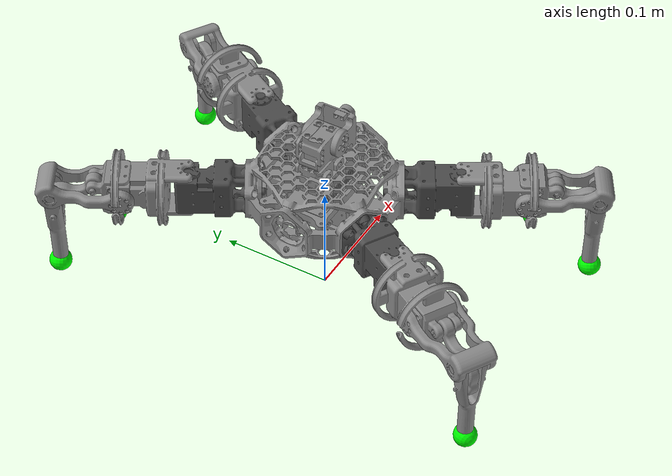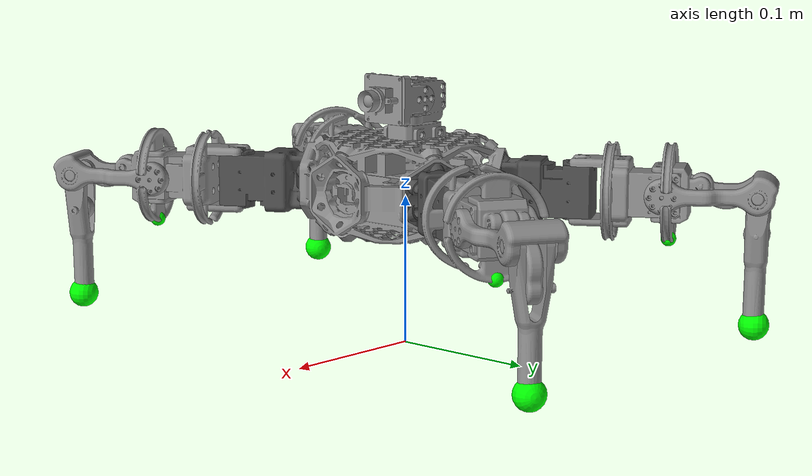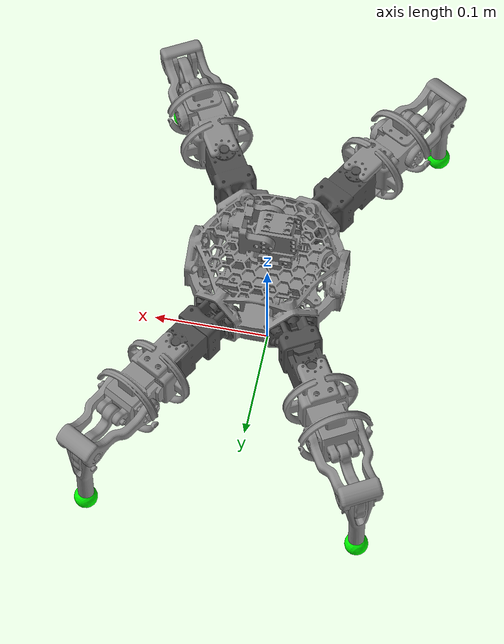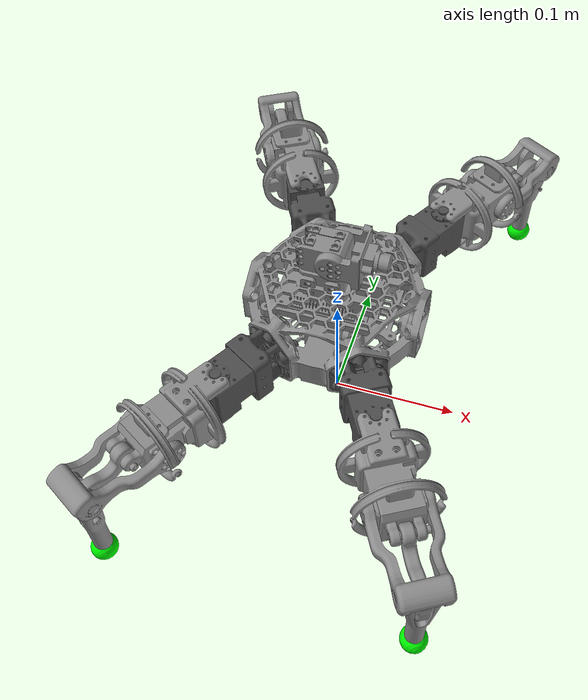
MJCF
<mujoco model="snapbot">

    <!-- Complier -->
    <compiler inertiafromgeom="auto" meshdir="./mesh" angle="radian" coordinate="local" />

    <!-- Default -->
    <default>
        <joint limited="false" armature="0.01" />
        <site type="sphere" rgba=".5 .5 .5 1" size="0.01" />
        <equality solref="0.0002 1" solimp="0.99 0.99 0.0001" />
    </default>

    <!-- Option -->
    <option timestep="0.002" iterations="100" solver="Newton" gravity="0 0 -9.81" integrator="RK4"></option>

    <!-- Mesh files -->
    <asset>
        <mesh name="Body" file="Body.STL" />
        <mesh name="Camera_module_1" file="Camera_module_1.STL" />
        <mesh name="Camera_module_2" file="Camera_module_2.STL" />

        <mesh name="Leg_module_1_1" file="Leg_module_1_1.STL" />
        <mesh name="Leg_module_1_2" file="Leg_module_1_2.STL" />
        <mesh name="Leg_module_1_3" file="Leg_module_1_3.STL" />
        <mesh name="Leg_module_1_4" file="Leg_module_1_4.STL" />
        <mesh name="Leg_module_1_4bar" file="Leg_module_1_4bar.STL" />

        <mesh name="Leg_module_2_1" file="Leg_module_2_1.STL" />
        <mesh name="Leg_module_2_2" file="Leg_module_2_2.STL" />
        <mesh name="Leg_module_2_3" file="Leg_module_2_3.STL" />
        <mesh name="Leg_module_2_4" file="Leg_module_2_4.STL" />
        <mesh name="Leg_module_2_4bar" file="Leg_module_2_4bar.STL" />

        <mesh name="Leg_module_3_1" file="Leg_module_3_1.STL" />
        <mesh name="Leg_module_3_2" file="Leg_module_3_2.STL" />
        <mesh name="Leg_module_3_3" file="Leg_module_3_3.STL" />
        <mesh name="Leg_module_3_4" file="Leg_module_3_4.STL" />
        <mesh name="Leg_module_3_4bar" file="Leg_module_3_4bar.STL" />

        <mesh name="Leg_module_4_1" file="Leg_module_4_1.STL" />
        <mesh name="Leg_module_4_2" file="Leg_module_4_2.STL" />
        <mesh name="Leg_module_4_3" file="Leg_module_4_3.STL" />
        <mesh name="Leg_module_4_4" file="Leg_module_4_4.STL" />
        <mesh name="Leg_module_4_4bar" file="Leg_module_4_4bar.STL" />

        <mesh name="Leg_module_5_1" file="Leg_module_5_1.STL" />
        <mesh name="Leg_module_5_2" file="Leg_module_5_2.STL" />
        <mesh name="Leg_module_5_3" file="Leg_module_5_3.STL" />
        <mesh name="Leg_module_5_4" file="Leg_module_5_4.STL" />
        <mesh name="Leg_module_5_4bar" file="Leg_module_5_4bar.STL" />

        <mesh name="Leg_module_6_1" file="Leg_module_6_1.STL" />
        <mesh name="Leg_module_6_2" file="Leg_module_6_2.STL" />
        <mesh name="Leg_module_6_3" file="Leg_module_6_3.STL" />
        <mesh name="Leg_module_6_4" file="Leg_module_6_4.STL" />
        <mesh name="Leg_module_6_4bar" file="Leg_module_6_4bar.STL" />
        <mesh name="Mario_case" file="Mario_case.STL" />
        <mesh name="Ship" file="ship.stl" />
    </asset>

    <worldbody>

        <body name="torso" pos="0 0 0.1" euler="0 0 0">
            <!-- if you want to fix snapbot -->
            <!-- if you want to simulate locomotion -->
            <joint type="free" name="free" />
            <body name="Camera_module_1" pos="0 0 0.0476705257539267" euler="0 0 2.71487279909846">
                <joint name="camera_1" type="hinge" pos="0 0 0" axis="0 0 1" frictionloss="0.7" />
                <inertial pos="0.00652656979384509 0.00344579233179434 0.0166383716296387"
                    mass="0.0631785349056668"
                    fullinertia="1.62642913929261E-06 2.16302130147651E-06 2.57241198744282E-06 -2.15537782337987E-07 -2.3575284377688E-08 -1.07181784470334E-08" />

                <body name="Camera_module_2" pos="0 0 0.0183294742460734"
                    euler="-0.00940777862508657 0.016293068306851 -7.66430506155596E-05">
                    <joint name="camera_2" type="hinge" pos="0 0 0" axis="0.4 -0.866025403784438 0"
                        limited="true" range="-3.14 0" frictionloss="0.7" />
                    <inertial pos="0.00652656979384509 0.00344579233179434 0.0166383716296387"
                        mass="0.0631785349056668"
                        fullinertia="1.62642913929261E-06 2.16302130147651E-06 2.57241198744282E-06 -2.15537782337987E-07 -2.3575284377688E-08 -1.07181784470334E-08" />
                    <geom name="camera_module_2" type="mesh" mesh="Camera_module_2"
                        rgba="0.55 0.55 0.55 1" />
                </body>
                <geom name="camera_module_1" type="mesh" mesh="Camera_module_1"
                    rgba="0.55 0.55 0.55 1" />
            </body>

            <body name="Leg_module_1_1"
                pos="-0.0389249999999994 -0.067420077684619 0.00800000000000007"
                euler="1.5707963267949 -0.52359877559829 0 ">
                <inertial pos="-7.13724657916415E-08 0.000373799301046029 0.0154182546673216"
                    mass="0.0631785349056668"
                    fullinertia="1.7187711929136E-05 1.51262656733829E-05 1.20475796652155E-05 -5.83240695477332E-11 -2.19004554231787E-11 -2.63262418810457E-08" />

                <body name="Leg_module_1_2" pos="0 0 0.03725" euler="0 0 0">
                    <site name="sensorsurf_1_2" pos="0 -0.03 0.06" size=".005" type="sphere"
                        rgba="0.0 1.0 0.0 1" />
                    <joint name="leg_1_2" type="hinge" pos="0 0 0" axis="0 1 0" limited="true"
                        range="-0.9 0.9" />
                    <inertial pos="-0.000290776360641731 0.000350553903850227 0.0424303561818183"
                        mass="0.0824272438246167"
                        fullinertia="2.30529583873532E-05 2.12214701574574E-05 2.44663283938561E-05 -3.10383306587857E-09 1.49529130127085E-09 -1.38478939744174E-07" />
                    <body name="Leg_module_1_3" pos="0 0.00029999999999997 0.05675"
                        euler="-0.0100573048452913 0 0">
                        <joint name="leg_1_3" type="hinge" pos="0 0 0" axis="1 0 0" limited="true"
                            range="-0.7 0.7" />
                        <inertial pos="2.45741484106166E-09 0.000972843111612398 0.0362265364672091"
                            mass="0.0151486232431239"
                            fullinertia="1.00807802365218E-05 1.39066075750629E-05 4.80921677651482E-06 4.39144266500018E-12 1.00434444831946E-12 -4.89507332017665E-07" />

                        <body name="Leg_module_1_4" pos="0 -0.000603428117922688 0.0599969655441553"
                            euler="-0.0105798453585739 0 0">
                            <site name="sensorsurf_1_4" pos="0 -0.085 -0.0023" size=".01"
                                type="sphere"
                                rgba="0.0 1.0 0.0 1" />
                            <joint name="leg_1_4" type="hinge" pos="0 0 0" axis="1 0 0" />
                            <inertial
                                pos="4.2049063279227E-05 -0.039076824241083 0.000258194696472008"
                                mass="0.0147333532003768"
                                fullinertia="1.15244152883744E-05 8.83031900445984E-07 1.19866034928746E-05 -2.48276737382714E-13 -7.91098093199601E-11 7.35395711252574E-08" />

                            <geom name="leg_module_1_4" type="mesh" mesh="Leg_module_1_4"
                                rgba="0.55 0.55 0.55 1" />
                        </body>

                        <geom name="leg_module_1_3" type="mesh" mesh="Leg_module_1_3"
                            rgba="0.55 0.55 0.55 1" />
                    </body>

                    <body name="Leg_module_1_4bar" pos="0 0.00629999999999993 0.0804999999999999"
                        euler="-0.0165784581965256 0 0">
                        <joint name="leg_1_4bar" type="hinge" pos="0 0 0" axis="1 0 0" />
                        <inertial pos="-0.000153041712520068 -0.0140289201388825 0.0234631009730388"
                            mass="0.00683592925491239"
                            fullinertia="2.34158176837936E-06 1.56240282628846E-06 8.57932156498236E-07 1.96473826365662E-09 8.83006715898015E-09 7.88959763188745E-07" />
                        <geom name="leg_module_1_4bar" type="mesh" mesh="Leg_module_1_4bar"
                            rgba="0.55 0.55 0.55 1" />
                    </body>

                    <geom name="leg_module_1_2" type="mesh" mesh="Leg_module_1_2"
                        rgba="0.55 0.55 0.55 1" />
                </body>
                <geom name="leg_module_1_1" type="mesh" mesh="Leg_module_1_1" rgba="0.3 0.3 0.3 1" />
            </body>

            <body name="Leg_module_2_1"
                pos="0.038925000000001 -0.067420077684618 0.00800000000000001"
                euler="1.5707963267949 0.52359877559831 0">
                <inertial pos="-6.95517456267281E-08 0.000373796224617955 0.0154182547311469"
                    mass="0.0631785349056668"
                    fullinertia="1.7187711736626E-05 1.5126265640837E-05 1.20475795338245E-05 -5.83542950351694E-11 -2.10512182302273E-11 -2.6325167749467E-08" />

                <body name="Leg_module_2_2" pos="0 0 0.03725" euler="0 0 0">
                    <site name="sensorsurf_2_2" pos="0 -0.03 0.06" size=".005" type="sphere"
                        rgba="0.0 1.0 0.0 1" />
                    <joint name="leg_2_2" type="hinge" pos="0 0 0" axis="0 1 0" limited="true"
                        range="-0.9 0.9" />
                    <inertial pos="-0.000290776360641731 0.000350553903850227 0.0424303561818183"
                        mass="0.0824272438246167"
                        fullinertia="2.30529583873532E-05 2.12214701574574E-05 2.44663283938561E-05 -3.10383306587857E-09 1.49529130127085E-09 -1.38478939744174E-07" />

                    <body name="Leg_module_2_3" pos="0 0.00029999999999997 0.05675"
                        euler="-0.0100573048452913 0 0">
                        <joint name="leg_2_3" type="hinge" pos="0 0 0" axis="1 0 0" limited="true"
                            range="-0.7 0.7" />
                        <inertial pos="2.45741484106166E-09 0.000972843111612398 0.0362265364672091"
                            mass="0.0151486232431239"
                            fullinertia="1.00807802365218E-05 1.39066075750629E-05 4.80921677651482E-06 4.39144266500018E-12 1.00434444831946E-12 -4.89507332017665E-07" />

                        <body name="Leg_module_2_4" pos="0 -0.000603428117922688 0.0599969655441553"
                            euler="-0.0105798453585739 0 0">
                            <site name="sensorsurf_2_4" pos="0 -0.085 -0.0023" size=".01"
                                type="sphere"
                                rgba="0.0 1.0 0.0 1" />
                            <joint name="leg_2_4" type="hinge" pos="0 0 0" axis="1 0 0" />
                            <inertial
                                pos="4.2049063279227E-05 -0.039076824241083 0.000258194696472008"
                                mass="0.0147333532003768"
                                fullinertia="1.15244152883744E-05 8.83031900445984E-07 1.19866034928746E-05 -2.48276737382714E-13 -7.91098093199601E-11 7.35395711252574E-08" />
                            <geom name="leg_module_2_4" type="mesh" mesh="Leg_module_2_4"
                                rgba="0.55 0.55 0.55 1" />
                        </body>

                        <geom name="leg_module_2_3" type="mesh" mesh="Leg_module_2_3"
                            rgba="0.55 0.55 0.55 1" />
                    </body>

                    <body name="Leg_module_2_4bar" pos="0 0.00629999999999993 0.0804999999999999"
                        euler="-0.0165784581965256 0 0">
                        <joint name="leg_2_4bar" type="hinge" pos="0 0 0" axis="1 0 0" />
                        <inertial pos="-0.000153041712520068 -0.0140289201388825 0.0234631009730388"
                            mass="0.00683592925491239"
                            fullinertia="2.34158176837936E-06 1.56240282628846E-06 8.57932156498236E-07 1.96473826365662E-09 8.83006715898015E-09 7.88959763188745E-07" />
                        <geom name="leg_module_2_4bar" type="mesh" mesh="Leg_module_2_4bar"
                            rgba="0.55 0.55 0.55 1" />
                    </body>

                    <geom name="leg_module_2_2" type="mesh" mesh="Leg_module_2_2"
                        rgba="0.55 0.55 0.55 1" />
                </body>
                <geom name="leg_module_2_1" type="mesh" mesh="Leg_module_2_1" rgba="0.3 0.3 0.3 1" />
            </body>

            <body name="Leg_module_4_1"
                pos="0.0389249999999999 0.0674200776846187 0.00800000000000003"
                euler="1.5707963267949 2.6179938779915 0">
                <inertial pos="-7.14195381237848E-08 0.000373799284010597 0.0154182546427434"
                    mass="0.0631785349539091"
                    fullinertia="1.71877118801813E-05 1.51262657263492E-05 1.20475796631155E-05 -5.8296210718309E-11 -2.19264106429705E-11 -2.63262530129922E-08" />

                <body name="Leg_module_4_2" pos="0 0 0.03725" euler="0 0 0">
                    <site name="sensorsurf_4_2" pos="0 -0.03 0.06" size=".005" type="sphere"
                        rgba="0.0 1.0 0.0 1" />
                    <joint name="leg_4_2" type="hinge" pos="0 0 0" axis="0 1 0" limited="true"
                        range="-0.9 0.9" />
                    <inertial pos="-0.000290776360642918 0.000350553903847839 0.0424303561817777"
                        mass="0.0824270440490109"
                        fullinertia="2.30529585034879E-05 2.12214709599619E-05 2.44663294862253E-05 -3.10286926634698E-09 1.49495155290744E-09 -1.38476843680271E-07" />

                    <body name="Leg_module_4_3" pos="0 0.000300000000000803 0.05675"
                        euler="-0.0100573048452958 0 0">
                        <joint name="leg_4_3" type="hinge" pos="0 0 0" axis="1 0 0" limited="true"
                            range="-0.7 0.7" />
                        <inertial pos="2.45741484106166E-09 0.000972843111612398 0.0362265364672091"
                            mass="0.0151486232431239"
                            fullinertia="1.00807802365218E-05 1.39066075750629E-05 4.80921677651482E-06 4.39144266500018E-12 1.00434444831946E-12 -4.89507332017665E-07" />

                        <body name="Leg_module_4_4" pos="0 -0.000603428117922688 0.0599969655441553"
                            euler="-0.0105798453585739 0 0">
                            <site name="sensorsurf_4_4" pos="0 -0.085 -0.0023" size=".01"
                                type="sphere"
                                rgba="0.0 1.0 0.0 1" />
                            <joint name="leg_4_4" type="hinge" pos="0 0 0" axis="1 0 0" />
                            <inertial
                                pos="4.2049063279227E-05 -0.039076824241083 0.000258194696472008"
                                mass="0.0147333532003768"
                                fullinertia="1.15244152883744E-05 8.83031900445984E-07 1.19866034928746E-05 -2.48276737382714E-13 -7.91098093199601E-11 7.35395711252574E-08" />
                            <geom name="leg_module_4_4" type="mesh" mesh="Leg_module_4_4"
                                rgba="0.55 0.55 0.55 1" />
                        </body>

                        <geom name="leg_module_4_3" type="mesh" mesh="Leg_module_4_3"
                            rgba="0.55 0.55 0.55 1" />
                    </body>

                    <body name="Leg_module_4_4bar" pos="0 0.00629999999999993 0.0804999999999999"
                        euler="-0.0165784581965256 0 0">
                        <joint name="leg_4_4bar" type="hinge" pos="0 0 0" axis="1 0 0" />
                        <inertial pos="-0.000153041712520068 -0.0140289201388825 0.0234631009730388"
                            mass="0.00683592925491239"
                            fullinertia="2.34158176837936E-06 1.56240282628846E-06 8.57932156498236E-07 1.96473826365662E-09 8.83006715898015E-09 7.88959763188745E-07" />
                        <geom name="leg_module_4_4bar" type="mesh" mesh="Leg_module_4_4bar"
                            rgba="0.55 0.55 0.55 1" />
                    </body>

                    <geom name="leg_module_4_2" type="mesh" mesh="Leg_module_4_2"
                        rgba="0.55 0.55 0.55 1" />
                </body>
                <geom name="leg_module_4_1" type="mesh" mesh="Leg_module_4_1" rgba="0.3 0.3 0.3 1" />
            </body>

            <body name="Leg_module_5_1"
                pos="-0.0389250000000003 0.0674200776846184 0.00799999999999998"
                euler="-1.5707963267949 -0.523598775598304 0">
                <inertial pos="-7.14195381237848E-08 0.000373799284010597 0.0154182546427434"
                    mass="0.0631785349539091"
                    fullinertia="1.71877118801813E-05 1.51262657263492E-05 1.20475796631155E-05 -5.8296210718309E-11 -2.19264106429705E-11 -2.63262530129922E-08" />

                <body name="Leg_module_5_2" pos="0 0 0.03725" euler="0 0 3.14159265358979">
                    <site name="sensorsurf_5_2" pos="0 -0.03 0.06" size=".005" type="sphere"
                        rgba="0.0 1.0 0.0 1" />
                    <joint name="leg_5_2" type="hinge" pos="0 0 0" axis="0 1 0" limited="true"
                        range="-0.9 0.9" />
                    <inertial pos="-0.000290776360642918 0.000350553903847839 0.0424303561817777"
                        mass="0.0824270440490109"
                        fullinertia="2.30529585034879E-05 2.12214709599619E-05 2.44663294862253E-05 -3.10286926634698E-09 1.49495155290744E-09 -1.38476843680271E-07" />

                    <body name="Leg_module_5_3" pos="0 0.000300000000000803 0.05675"
                        euler="-0.0100573048452958 0 0">
                        <joint name="leg_5_3" type="hinge" pos="0 0 0" axis="1 0 0" limited="true"
                            range="-0.7 0.7" />
                        <inertial pos="2.45741484106166E-09 0.000972843111612398 0.0362265364672091"
                            mass="0.0151486232431239"
                            fullinertia="1.00807802365218E-05 1.39066075750629E-05 4.80921677651482E-06 4.39144266500018E-12 1.00434444831946E-12 -4.89507332017665E-07" />

                        <body name="Leg_module_5_4" pos="0 -0.000603428117922688 0.0599969655441553"
                            euler="-0.0105798453585739 0 0">
                            <site name="sensorsurf_5_4" pos="0 -0.085 -0.0023" size=".01"
                                type="sphere"
                                rgba="0.0 1.0 0.0 1" />
                            <joint name="leg_5_4" type="hinge" pos="0 0 0" axis="1 0 0" />
                            <inertial
                                pos="4.2049063279227E-05 -0.039076824241083 0.000258194696472008"
                                mass="0.0147333532003768"
                                fullinertia="1.15244152883744E-05 8.83031900445984E-07 1.19866034928746E-05 -2.48276737382714E-13 -7.91098093199601E-11 7.35395711252574E-08" />
                            <geom name="leg_module_5_4" type="mesh" mesh="Leg_module_5_4"
                                rgba="0.55 0.55 0.55 1" />
                        </body>

                        <geom name="leg_module_5_3" type="mesh" mesh="Leg_module_5_3"
                            rgba="0.55 0.55 0.55 1" />
                    </body>

                    <body name="Leg_module_5_4bar" pos="0 0.00629999999999993 0.0804999999999999"
                        euler="-0.0165784581965256 0 0">
                        <joint name="leg_5_4bar" type="hinge" pos="0 0 0" axis="1 0 0" />
                        <inertial pos="-0.000153041712520068 -0.0140289201388825 0.0234631009730388"
                            mass="0.00683592925491239"
                            fullinertia="2.34158176837936E-06 1.56240282628846E-06 8.57932156498236E-07 1.96473826365662E-09 8.83006715898015E-09 7.88959763188745E-07" />
                        <geom name="leg_module_5_4bar" type="mesh" mesh="Leg_module_5_4bar"
                            rgba="0.55 0.55 0.55 1" />
                    </body>

                    <geom name="leg_module_5_2" type="mesh" mesh="Leg_module_5_2"
                        rgba="0.55 0.55 0.55 1" />
                </body>
                <geom name="leg_module_5_1" type="mesh" mesh="Leg_module_5_1" rgba="0.3 0.3 0.3 1" />
            </body>

            <geom name="body" type="mesh" mesh="Body" rgba="0.55 0.55 0.55 1" />
            <inertial pos="0.000698393115871022 0.000288945802796678 0.00570476280644027"
                mass="0.243375116892044"
                fullinertia="0.000212893207585076 0.0001937211842341 0.000369983133865988 5.24940171471578E-07 -2.46229578713819E-07 2.43146414991933E-07" />
        </body>
    </worldbody>

    <!-- Set constraints for closed-loop body -->
    <equality>
        <connect active="true" name="equality_constraint1" anchor="0 -0.025 0"
            body1="Leg_module_1_4" body2="Leg_module_1_4bar" />
        <connect active="true" name="equality_constraint2" anchor="0 -0.025 0"
            body1="Leg_module_2_4" body2="Leg_module_2_4bar" />
        <connect active="true" name="equality_constraint4" anchor="0 -0.025 0"
            body1="Leg_module_4_4" body2="Leg_module_4_4bar" />
        <connect active="true" name="equality_constraint5" anchor="0 -0.025 0"
            body1="Leg_module_5_4" body2="Leg_module_5_4bar" />
    </equality>

    <!-- Exclude contact information -->
    <contact>
        <exclude body1="Leg_module_1_3" body2="Leg_module_1_4bar" />
        <exclude body1="Leg_module_1_4" body2="Leg_module_1_4bar" />
        <exclude body1="Leg_module_2_3" body2="Leg_module_2_4bar" />
        <exclude body1="Leg_module_2_4" body2="Leg_module_2_4bar" />
        <exclude body1="Leg_module_4_3" body2="Leg_module_4_4bar" />
        <exclude body1="Leg_module_4_4" body2="Leg_module_4_4bar" />
        <exclude body1="Leg_module_5_3" body2="Leg_module_5_4bar" />
        <exclude body1="Leg_module_5_4" body2="Leg_module_5_4bar" />
    </contact>

    <!-- Sensors -->
    <sensor>
        <touch name="touchsensor_1_4" site="sensorsurf_1_4" />
        <touch name="touchsensor_2_4" site="sensorsurf_2_4" />
        <touch name="touchsensor_4_4" site="sensorsurf_4_4" />
        <touch name="touchsensor_5_4" site="sensorsurf_5_4" />
        <touch name="touchsensor_1_2" site="sensorsurf_1_2" />
        <touch name="touchsensor_2_2" site="sensorsurf_2_2" />
        <touch name="touchsensor_4_2" site="sensorsurf_4_2" />
        <touch name="touchsensor_5_2" site="sensorsurf_5_2" />
    </sensor>

    <!-- Actuators -->
    <actuator>
        <motor name="actuator_1_2" ctrllimited="true" ctrlrange="-5.0 5.0" joint="leg_1_2" />
        <motor name="actuator_1_3" ctrllimited="true" ctrlrange="-5.0 5.0" joint="leg_1_3" />
        <motor name="actuator_2_2" ctrllimited="true" ctrlrange="-5.0 5.0" joint="leg_2_2" />
        <motor name="actuator_2_3" ctrllimited="true" ctrlrange="-5.0 5.0" joint="leg_2_3" />
        <motor name="actuator_4_2" ctrllimited="true" ctrlrange="-5.0 5.0" joint="leg_4_2" />
        <motor name="actuator_4_3" ctrllimited="true" ctrlrange="-5.0 5.0" joint="leg_4_3" />
        <motor name="actuator_5_2" ctrllimited="true" ctrlrange="-5.0 5.0" joint="leg_5_2" />
        <motor name="actuator_5_3" ctrllimited="true" ctrlrange="-5.0 5.0" joint="leg_5_3" />
    </actuator>

</mujoco>
